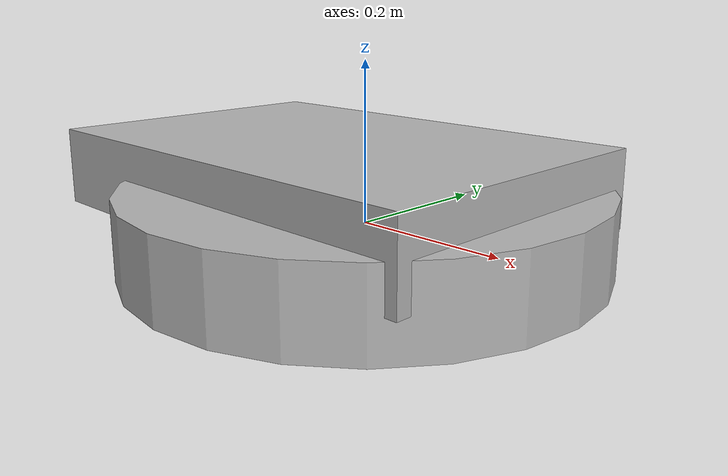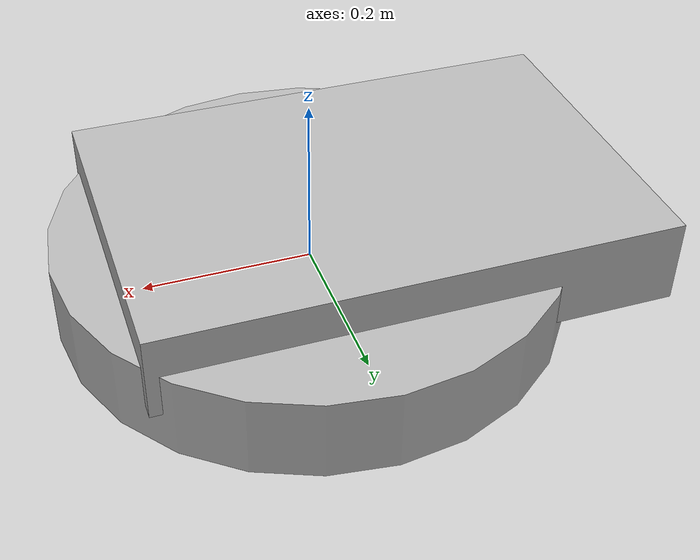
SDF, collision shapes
<?xml version="1.0"?>
<sdf version="1.7">
  <model name="robo_camuflado">
    <!-- Base Links -->
    <link name="base_footprint">

      <inertial>
        <mass>0.001</mass>
        <inertia>
          <ixx>1e-6</ixx><iyy>1e-6</iyy><izz>1e-6</izz>
          <ixy>0</ixy><ixz>0</ixz><iyz>0</iyz>
        </inertia>
      </inertial>
      <collision name="collision">
        <geometry>
          <box>
            <size>0.01 0.01 0.01</size>
          </box>
        </geometry>
      </collision>
    </link>

    <link name="base_link">

      <visual name="base_visual">
        <pose>-0.064 0 0 0 0 0</pose>
        <geometry>
          <mesh>
            <uri>file:///home/ruben/Documents/ProjetoFinal/roboauto/models/robo_camuflado/meshes/base_link.dae</uri>
            <scale>1 1 1</scale>
          </mesh>
        </geometry>
      </visual>
      <collision name="base_collision">
        <pose>-0.064 0 0.048 0 0 0</pose>
        <geometry>
          <box>
            <size>0.6 0.4 0.1</size>
          </box>
        </geometry>
      </collision>
      <inertial>
        <mass>5.0</mass>
        <inertia>
          <ixx>0.1</ixx>
          <ixy>0</ixy>
          <ixz>0</ixz>
          <iyy>0.1</iyy>
          <iyz>0</iyz>
          <izz>0.1</izz>
        </inertia>
      </inertial>
    </link>
    <joint name="base_joint" type="fixed">
      <pose>0 0 0.01 0 0 0</pose>
      <parent>base_footprint</parent>
      <child>base_link</child>
    </joint>
    <!-- IMU -->
    <link name="imu_link">
      <sensor name="imu" type="imu">
        <always_on>1</always_on>
        <update_rate>200</update_rate>
        <visualize>true</visualize>
        <topic>imu</topic>
        <ignition_frame_id>imu_link</ignition_frame_id>
        <imu>
          <angular_velocity>
            <x><noise type="gaussian"><mean>0.0</mean><stddev>2e-4</stddev></noise></x>
            <y><noise type="gaussian"><mean>0.0</mean><stddev>2e-4</stddev></noise></y>
            <z><noise type="gaussian"><mean>0.0</mean><stddev>2e-4</stddev></noise></z>
          </angular_velocity>
          <linear_acceleration>
            <x><noise type="gaussian"><mean>0.0</mean><stddev>1.7e-2</stddev></noise></x>
            <y><noise type="gaussian"><mean>0.0</mean><stddev>1.7e-2</stddev></noise></y>
            <z><noise type="gaussian"><mean>0.0</mean><stddev>1.7e-2</stddev></noise></z>
          </linear_acceleration>
        </imu>
      </sensor>
    </link>
    <joint name="imu_joint" type="fixed">
      <pose>-0.032 0 0.068 0 0 0</pose>
      <parent>base_link</parent>
      <child>imu_link</child>
    </joint>

    <!-- CAMARA -->
    <link name="camera_link"/>
      <visual name="camera_visual">
        <geometry>
          <box>
            <size>0.05 0.05 0.05</size>
          </box>
        </geometry>
        <material>
          <ambient>0 1 0 1</ambient> <!-- green -->
          <diffuse>0 1 0 1</diffuse>
        </material>
      </visual>
    <joint name="camera_joint" type="fixed">
      <parent>base_link</parent>
      <child>camera_link</child>
      <pose>0 0 0 0 0 0</pose>
      <axis><xyz>0 0 1</xyz></axis>
    </joint>

    <link name="camera_rgb_frame">
      <inertial>
        <pose>0 0 0 0 0 0</pose>
        <inertia>
          <ixx>0.001</ixx><ixy>0.000</ixy><ixz>0.000</ixz>
          <iyy>0.001</iyy><iyz>0.000</iyz><izz>0.001</izz>
        </inertia>
        <mass>0.035</mass>
      </inertial>
      <pose>0 0 0 0 0 0</pose>
      <sensor name="camera" type="camera">
        <always_on>true</always_on>
        <visualize>true</visualize>
        <update_rate>30</update_rate>
        <camera_info_topic>/camera/rgb/camera_info</camera_info_topic>
        <topic>/camera/rgb/image_raw</topic>
        <ignition_frame_id>camera_rgb_frame</ignition_frame_id>
        <camera name="intel_realsense_r200">
          <horizontal_fov>1.02974</horizontal_fov>
          <image><width>1920</width><height>1080</height><format>R8G8B8</format></image>
          <clip><near>0.02</near><far>300</far></clip>
          <noise><type>gaussian</type><mean>0.0</mean><stddev>0.007</stddev></noise>
        </camera>
      </sensor>
    </link>
    <joint name="camera_rgb_joint" type="fixed">
      <parent>camera_link</parent>
      <child>camera_rgb_frame</child>
      <pose>0.1 0 0.35 0 0 0</pose> <!-- Modificado: à frente do LIDAR -->
      <axis><xyz>0 0 1</xyz></axis>
    </joint>

    <!-- LIDAR -->
    <link name="base_scan">
      <inertial>
        <pose>0 0 0 0 0 0</pose>
        <inertia><ixx>0.001</ixx><ixy>0</ixy><ixz>0</ixz><iyy>0.001</iyy><iyz>0</iyz><izz>0.001</izz></inertia>
        <mass>0.114</mass>
      </inertial>
      <collision name="lidar_sensor_collision">
        <pose>0 0 0 0 0 0</pose>
        <geometry>
          <cylinder><radius>0.0508</radius><length>0.055</length></cylinder>
        </geometry>
      </collision>
      <visual name="lidar_sensor_visual">
        <pose>0 0 0 0 0 0</pose>
        <geometry>
          <mesh>
            <uri>model://robo_camuflado/meshes/lidar_link.dae</uri>
            <scale>1 1 1</scale>
          </mesh>
        </geometry>
        <material>
          <diffuse>0.145098039 0.156862745 0.164705882 1</diffuse>
          <ambient>0.145098039 0.156862745 0.164705882 1</ambient>
          <specular>0.145098039 0.156862745 0.164705882 1</specular>
        </material>
      </visual>
      <sensor name="gpu_lidar" type="gpu_lidar">
        <pose>0 0 0 0 0 0</pose>
        <topic>scan</topic>
        <ignition_frame_id>base_scan</ignition_frame_id>
        <update_rate>5</update_rate>
        <ray>
          <scan>
            <horizontal>
              <samples>360</samples>
              <resolution>1</resolution>
              <min_angle>0</min_angle>
              <max_angle>6.28</max_angle>
            </horizontal>
          </scan>
          <range>
            <min>0.120000</min>
            <max>20.0</max>
            <resolution>0.015000</resolution>
          </range>
          <noise>
            <type>gaussian</type>
            <mean>0.0</mean>
            <stddev>0.01</stddev>
          </noise>
        </ray>
        <always_on>true</always_on>
        <visualize>1</visualize>
      </sensor>
    </link>
    <joint name="lidar_joint" type="fixed">
      <pose>0 0 0.3 0 0 0</pose> <!-- Modificado: LIDAR no topo do robô -->
      <parent>base_link</parent>
      <child>base_scan</child>
    </joint>

    <!-- Front Left Wheel -->
    <link name="wheel_fl">
      <visual name="wheel_fl_visual">
        <geometry>
          <mesh>
            <uri>file:///home/ruben/Documents/ProjetoFinal/roboauto/models/robo_camuflado/meshes/wheel_fl.dae</uri>
            <scale>1 1 1</scale>
          </mesh>
        </geometry>
      </visual>
      <collision name="wheel_fl_collision">
        <geometry>
          <cylinder>
            <radius>0.3</radius> <!-- Adjust to match your wheel size -->
            <length>0.1</length>
          </cylinder>
        </geometry>
        <surface>
  <friction>
    <ode>
      <mu>1.0</mu>
      <mu2>1.0</mu2>
    </ode>
  </friction>
</surface>
      </collision>
      <inertial>
        <mass>0.5</mass>
        <inertia>
          <ixx>0.01</ixx>
          <ixy>0</ixy>
          <ixz>0</ixz>
          <iyy>0.01</iyy>
          <iyz>0</iyz>
          <izz>0.005</izz>
        </inertia>
      </inertial>
    </link>
    <!-- Front Right Wheel -->
    <link name="wheel_fr">
      <visual name="wheel_fr_visual">
        <geometry>
          <mesh>
            <uri>file:///home/ruben/Documents/ProjetoFinal/roboauto/models/robo_camuflado/meshes/wheel_fr.dae</uri>
            <scale>1 1 1</scale>
          </mesh>
        </geometry>
      </visual>
      <collision name="wheel_fr_collision">
        <geometry>
          <cylinder>
            <radius>0.3</radius>
            <length>0.1</length>
          </cylinder>
        </geometry>
        <surface>
          <friction>
            <ode>
              <mu>1.0</mu>
              <mu2>1.0</mu2>
            </ode>
          </friction>
        </surface>
      </collision>
      <inertial>
        <mass>0.5</mass>
        <inertia>
          <ixx>0.01</ixx>
          <ixy>0</ixy>
          <ixz>0</ixz>
          <iyy>0.01</iyy>
          <iyz>0</iyz>ujn
          <izz>0.005</izz>
        </inertia>
      </inertial>
    </link>

    <!-- Back Left Wheel -->
    <link name="wheel_bl">
      <visual name="wheel_bl_visual">
        <geometry>
          <mesh>
            <uri>file:///home/ruben/Documents/ProjetoFinal/roboauto/models/robo_camuflado/meshes/wheel_bl.dae</uri>
            <scale>1 1 1</scale>
          </mesh>
        </geometry>
      </visual>
      <collision name="wheel_bl_collision">
        <geometry>
          <cylinder>
            <radius>0.3</radius>
            <length>0.1</length>
          </cylinder>
        </geometry>
        <surface>
  <friction>
    <ode>
      <mu>1.0</mu>
      <mu2>1.0</mu2>
    </ode>
  </friction>
</surface>
      </collision>
      <inertial>
        <mass>0.5</mass>
        <inertia>
          <ixx>0.01</ixx>
          <ixy>0</ixy>
          <ixz>0</ixz>
          <iyy>0.01</iyy>
          <iyz>0</iyz>
          <izz>0.005</izz>
        </inertia>
      </inertial>
    </link>

    <!-- Back Right Wheel -->
    <link name="wheel_br">
      <visual name="wheel_br_visual">
        <geometry>
          <mesh>
            <uri>file:///home/ruben/Documents/ProjetoFinal/roboauto/models/robo_camuflado/meshes/wheel_br.dae</uri>
            <scale>1 1 1</scale>
          </mesh>
        </geometry>
      </visual>
      <collision name="wheel_br_collision">
        <geometry>
          <cylinder>
            <radius>0.3</radius>
            <length>0.1</length>
          </cylinder>
        </geometry>
        <surface>
          <friction>
            <ode>
              <mu>1.0</mu>
              <mu2>1.0</mu2>
            </ode>
          </friction>
        </surface>
      </collision>
      <inertial>
        <mass>0.5</mass>
        <inertia>
          <ixx>0.01</ixx>
          <ixy>0</ixy>
          <ixz>0</ixz>
          <iyy>0.01</iyy>
          <iyz>0</iyz>
          <izz>0.005</izz>
        </inertia>
      </inertial>
    </link>

    <!-- Wheel Joints -->
    <joint name="wheel_fl_joint" type="revolute">
      <parent>base_link</parent>
      <child>wheel_fl</child>
      <axis>
        <xyz>0 1 0</xyz>
        <dynamics>
          <damping>0.5</damping>
        </dynamics>
      </axis>
      <pose>-0.15 0.15 0.3 0 0 0</pose> <!-- Adjust position as needed -->
    </joint>

    <joint name="wheel_fr_joint" type="revolute">
      <parent>base_link</parent>
      <child>wheel_fr</child>
      <axis>
        <xyz>0 1 0</xyz>
        <dynamics>
          <damping>0.5</damping>
        </dynamics>
      </axis>
      <pose>-0.15 -0.15 0.3 0 0 0</pose>
    </joint>

    <joint name="wheel_bl_joint" type="revolute">
      <parent>base_link</parent>
      <child>wheel_bl</child>
      <axis>
        <xyz>0 1 0</xyz>
        <dynamics>
          <damping>0.5</damping>
        </dynamics>
      </axis>
      <pose>0.15 0.15 0.3 0 0 0</pose>
    </joint>

    <joint name="wheel_br_joint" type="revolute">
      <parent>base_link</parent>
      <child>wheel_br</child>
      <axis>
        <xyz>0 1 0</xyz>
        <dynamics>
          <damping>0.5</damping>
        </dynamics>
      </axis>
      <pose>0.15 -0.15 0.3 0 0 0</pose>
    </joint>

  <!-- Global odometer -->
    <plugin
      filename="ignition-gazebo-odometry-publisher-system"
      name="ignition::gazebo::systems::OdometryPublisher">
      <odom_publish_frequency>50</odom_publish_frequency>
      <odom_topic>/odom</odom_topic>
      <odom_frame>odom</odom_frame>
      <robot_base_frame>base_footprint</robot_base_frame>
      <tf_topic>/odom/tf</tf_topic>
    </plugin>

    <!-- Differential drive -->
    <plugin filename="libignition-gazebo-diff-drive-system.so"
            name="ignition::gazebo::systems::DiffDrive">
      <left_joint>wheel_fl_joint</left_joint>
      <right_joint>wheel_fr_joint</right_joint>
      <wheel_separation>0.287</wheel_separation>
      <wheel_radius>0.3</wheel_radius>
      <topic>cmd_vel</topic>
    </plugin>

    <!-- Joint state publisher -->
    <plugin filename="libignition-gazebo-joint-state-publisher-system.so"
      name="ignition::gazebo::systems::JointStatePublisher">
      <topic>joint_states</topic>
    </plugin>
  </model>
</sdf>
